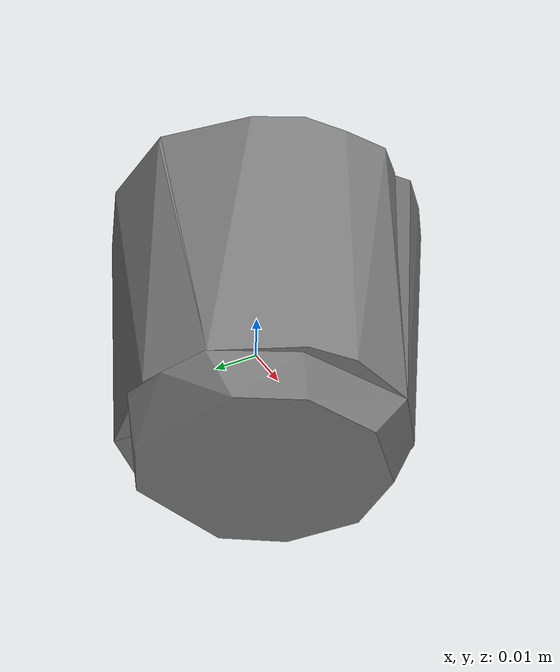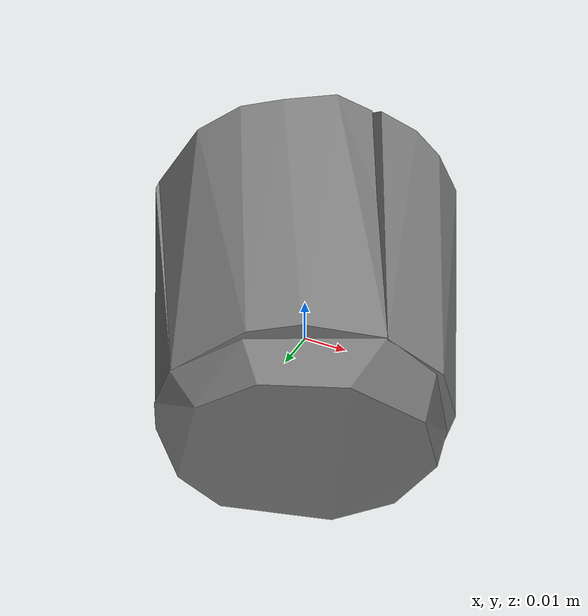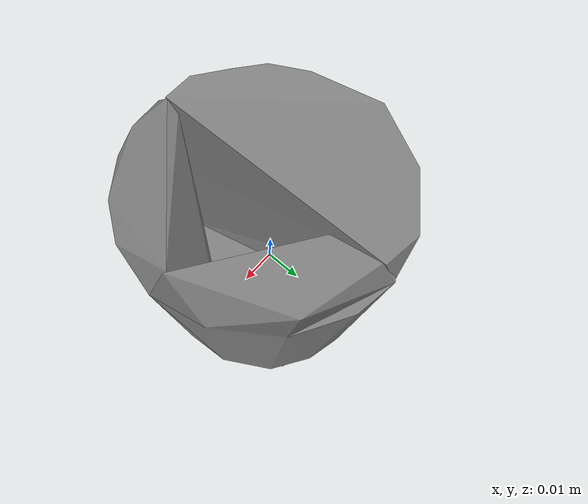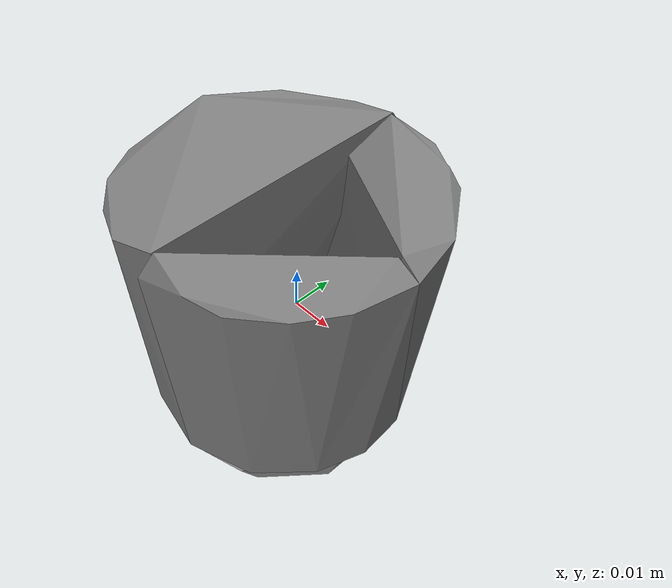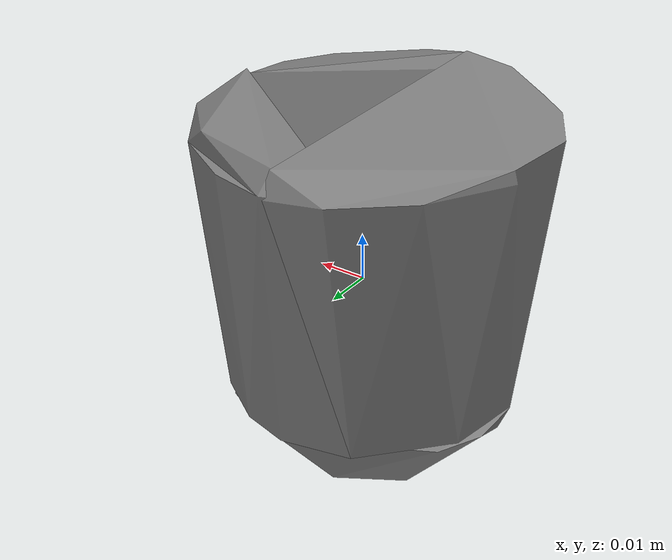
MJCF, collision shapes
<mujoco model="d_cups">
  <compiler angle="radian" />

  <asset>
    <mesh name="d_cups_visual_mesh" file="d_cups/textured.obj" />
    <mesh name="d_cups_collision_mesh_0" file="d_cups/textured_coacd_0.stl" />
    <mesh name="d_cups_collision_mesh_1" file="d_cups/textured_coacd_1.stl" />
    <mesh name="d_cups_collision_mesh_2" file="d_cups/textured_coacd_2.stl" />
    <mesh name="d_cups_collision_mesh_3" file="d_cups/textured_coacd_3.stl" />
    <texture name="d_cups_texture" type="2d" file="d_cups/texture_map.png" />
    <material name="d_cups_material" texture="d_cups_texture" />
  </asset>

  <worldbody>
    <body name="d_cups" pos="0 0 0" euler="0 0 0">
      <freejoint name="d_cups_joint" />
      <geom name="d_cups_visual_geom" type="mesh" mesh="d_cups_visual_mesh" material="d_cups_material" pos="0.018377150074668475 0.059786665220060674 -0.03158304348204601" euler="0 0 0" contype="0" conaffinity="0" group="0" />
      <geom name="d_cups_collision_geom_0" type="mesh" mesh="d_cups_collision_mesh_0" pos="0.018377150074668475 0.059786665220060674 -0.03158304348204601" euler="0 0 0" contype="1" conaffinity="1" group="3" />
      <geom name="d_cups_collision_geom_1" type="mesh" mesh="d_cups_collision_mesh_1" pos="0.018377150074668475 0.059786665220060674 -0.03158304348204601" euler="0 0 0" contype="1" conaffinity="1" group="3" />
      <geom name="d_cups_collision_geom_2" type="mesh" mesh="d_cups_collision_mesh_2" pos="0.018377150074668475 0.059786665220060674 -0.03158304348204601" euler="0 0 0" contype="1" conaffinity="1" group="3" />
      <geom name="d_cups_collision_geom_3" type="mesh" mesh="d_cups_collision_mesh_3" pos="0.018377150074668475 0.059786665220060674 -0.03158304348204601" euler="0 0 0" contype="1" conaffinity="1" group="3" />
      <inertial pos="0 0 0" euler="0 0 0" mass="0.019" diaginertia="0.001 0.001 0.001" />
    </body>
  </worldbody>
</mujoco>
